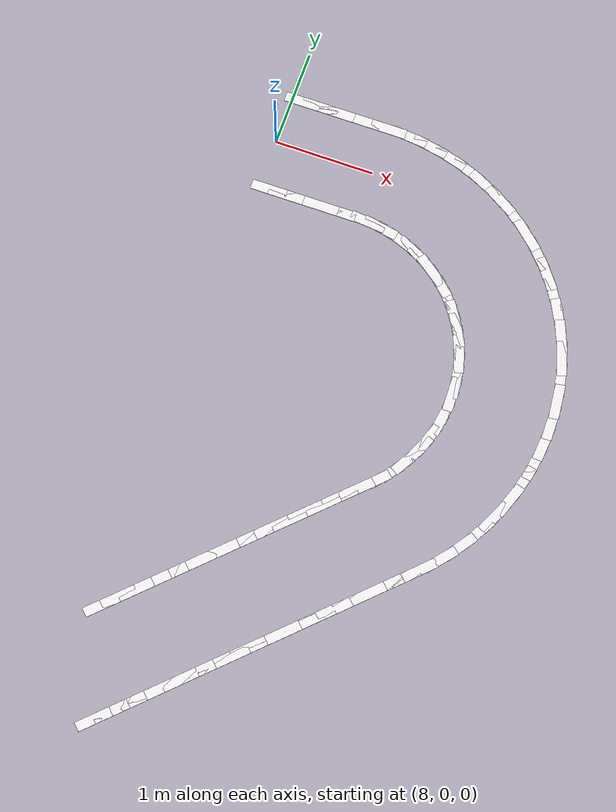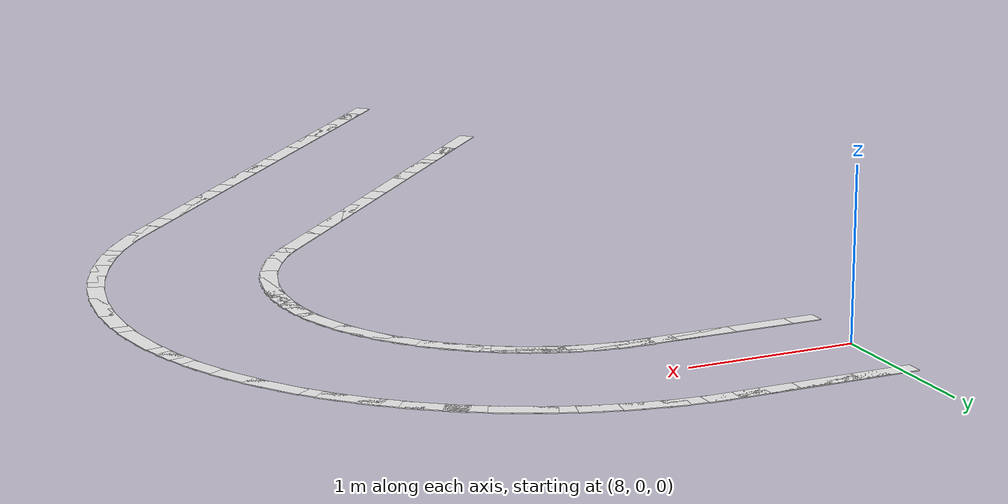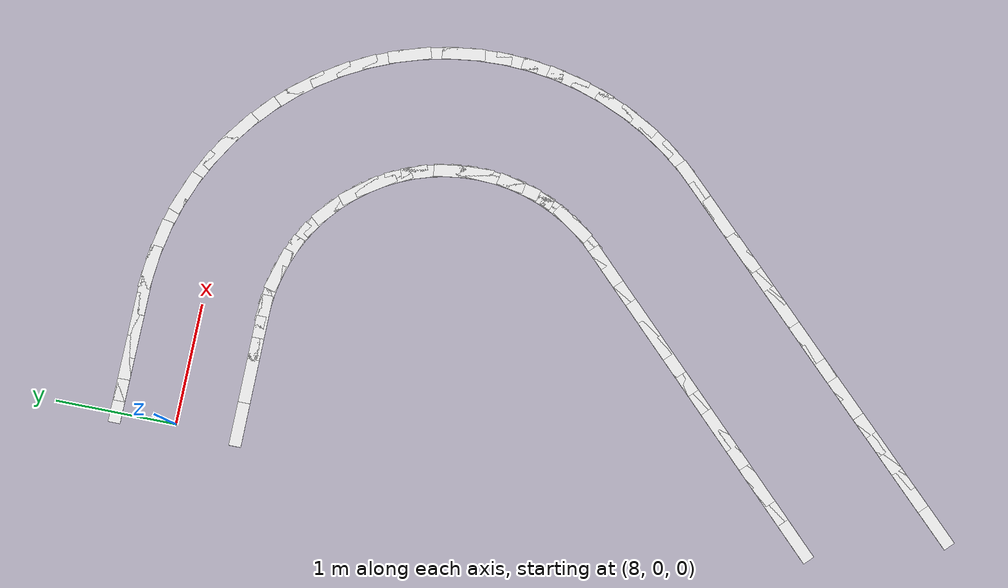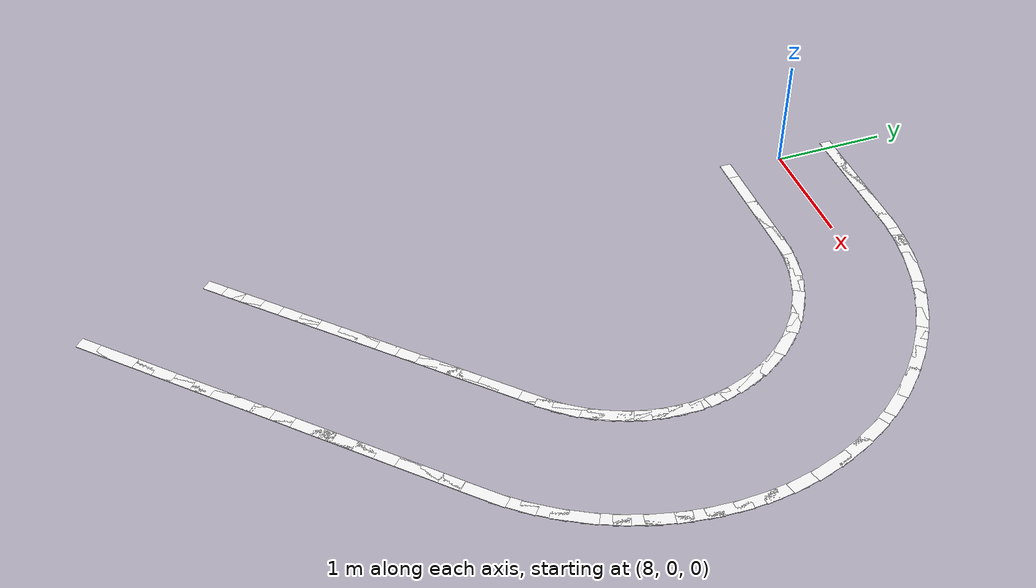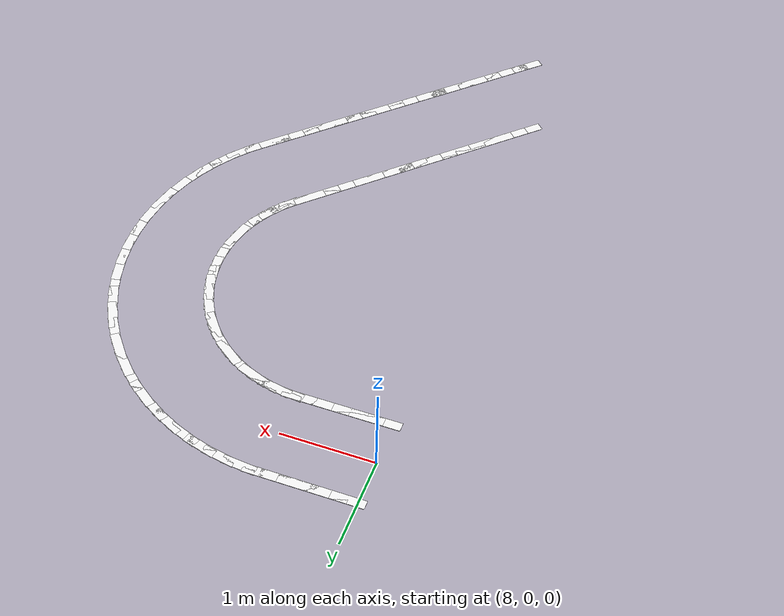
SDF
<sdf version="1.7">
 <world name="cone_lane">
  <model name="ground_plane">
   <static>true</static>
   <link name="link">
    <collision name="collision">
     <geometry><plane><normal>0 0 1</normal><size>150 150</size></plane></geometry>
     <surface><friction><ode><mu>1.0</mu></ode></friction></surface>
    </collision>
   </link>
  </model>
  <model name="line_L046">
   <static>true</static>
   <pose>8.100 0.500 0.0030 0 0 0.0000</pose>
   <link name="link">
    <visual name="v">
     <geometry><box><size>0.360 0.100 0.005</size></box></geometry>
     <material>
      <ambient>0.85 0.85 0.85 1</ambient>
      <diffuse>0.95 0.95 0.95 1</diffuse>
      <specular>0.1 0.1 0.1 1</specular>
      <emissive>0.7 0.7 0.7 1</emissive>
     </material>
    </visual>
   </link>
  </model>
  <model name="line_L047">
   <static>true</static>
   <pose>8.280 0.500 0.0030 0 0 0.0000</pose>
   <link name="link">
    <visual name="v">
     <geometry><box><size>0.360 0.100 0.005</size></box></geometry>
     <material>
      <ambient>0.85 0.85 0.85 1</ambient>
      <diffuse>0.95 0.95 0.95 1</diffuse>
      <specular>0.1 0.1 0.1 1</specular>
      <emissive>0.7 0.7 0.7 1</emissive>
     </material>
    </visual>
   </link>
  </model>
  <model name="line_L048">
   <static>true</static>
   <pose>8.460 0.500 0.0030 0 0 0.0000</pose>
   <link name="link">
    <visual name="v">
     <geometry><box><size>0.360 0.100 0.005</size></box></geometry>
     <material>
      <ambient>0.85 0.85 0.85 1</ambient>
      <diffuse>0.95 0.95 0.95 1</diffuse>
      <specular>0.1 0.1 0.1 1</specular>
      <emissive>0.7 0.7 0.7 1</emissive>
     </material>
    </visual>
   </link>
  </model>
  <model name="line_L049">
   <static>true</static>
   <pose>8.640 0.500 0.0030 0 0 0.0000</pose>
   <link name="link">
    <visual name="v">
     <geometry><box><size>0.360 0.100 0.005</size></box></geometry>
     <material>
      <ambient>0.85 0.85 0.85 1</ambient>
      <diffuse>0.95 0.95 0.95 1</diffuse>
      <specular>0.1 0.1 0.1 1</specular>
      <emissive>0.7 0.7 0.7 1</emissive>
     </material>
    </visual>
   </link>
  </model>
  <model name="line_L050">
   <static>true</static>
   <pose>8.820 0.500 0.0030 0 0 0.0000</pose>
   <link name="link">
    <visual name="v">
     <geometry><box><size>0.360 0.100 0.005</size></box></geometry>
     <material>
      <ambient>0.85 0.85 0.85 1</ambient>
      <diffuse>0.95 0.95 0.95 1</diffuse>
      <specular>0.1 0.1 0.1 1</specular>
      <emissive>0.7 0.7 0.7 1</emissive>
     </material>
    </visual>
   </link>
  </model>
  <model name="line_L051">
   <static>true</static>
   <pose>9.001 0.500 0.0030 0 0 -0.0025</pose>
   <link name="link">
    <visual name="v">
     <geometry><box><size>0.360 0.100 0.005</size></box></geometry>
     <material>
      <ambient>0.85 0.85 0.85 1</ambient>
      <diffuse>0.95 0.95 0.95 1</diffuse>
      <specular>0.1 0.1 0.1 1</specular>
      <emissive>0.7 0.7 0.7 1</emissive>
     </material>
    </visual>
   </link>
  </model>
  <model name="line_L052">
   <static>true</static>
   <pose>9.225 0.490 0.0030 0 0 -0.0902</pose>
   <link name="link">
    <visual name="v">
     <geometry><box><size>0.360 0.100 0.005</size></box></geometry>
     <material>
      <ambient>0.85 0.85 0.85 1</ambient>
      <diffuse>0.95 0.95 0.95 1</diffuse>
      <specular>0.1 0.1 0.1 1</specular>
      <emissive>0.7 0.7 0.7 1</emissive>
     </material>
    </visual>
   </link>
  </model>
  <model name="line_L053">
   <static>true</static>
   <pose>9.449 0.459 0.0030 0 0 -0.1805</pose>
   <link name="link">
    <visual name="v">
     <geometry><box><size>0.360 0.100 0.005</size></box></geometry>
     <material>
      <ambient>0.85 0.85 0.85 1</ambient>
      <diffuse>0.95 0.95 0.95 1</diffuse>
      <specular>0.1 0.1 0.1 1</specular>
      <emissive>0.7 0.7 0.7 1</emissive>
     </material>
    </visual>
   </link>
  </model>
  <model name="line_L054">
   <static>true</static>
   <pose>9.669 0.409 0.0030 0 0 -0.2707</pose>
   <link name="link">
    <visual name="v">
     <geometry><box><size>0.360 0.100 0.005</size></box></geometry>
     <material>
      <ambient>0.85 0.85 0.85 1</ambient>
      <diffuse>0.95 0.95 0.95 1</diffuse>
      <specular>0.1 0.1 0.1 1</specular>
      <emissive>0.7 0.7 0.7 1</emissive>
     </material>
    </visual>
   </link>
  </model>
  <model name="line_L055">
   <static>true</static>
   <pose>9.883 0.339 0.0030 0 0 -0.3609</pose>
   <link name="link">
    <visual name="v">
     <geometry><box><size>0.360 0.100 0.005</size></box></geometry>
     <material>
      <ambient>0.85 0.85 0.85 1</ambient>
      <diffuse>0.95 0.95 0.95 1</diffuse>
      <specular>0.1 0.1 0.1 1</specular>
      <emissive>0.7 0.7 0.7 1</emissive>
     </material>
    </visual>
   </link>
  </model>
  <model name="line_L056">
   <static>true</static>
   <pose>10.090 0.250 0.0030 0 0 -0.4512</pose>
   <link name="link">
    <visual name="v">
     <geometry><box><size>0.360 0.100 0.005</size></box></geometry>
     <material>
      <ambient>0.85 0.85 0.85 1</ambient>
      <diffuse>0.95 0.95 0.95 1</diffuse>
      <specular>0.1 0.1 0.1 1</specular>
      <emissive>0.7 0.7 0.7 1</emissive>
     </material>
    </visual>
   </link>
  </model>
  <model name="line_L057">
   <static>true</static>
   <pose>10.288 0.142 0.0030 0 0 -0.5414</pose>
   <link name="link">
    <visual name="v">
     <geometry><box><size>0.360 0.100 0.005</size></box></geometry>
     <material>
      <ambient>0.85 0.85 0.85 1</ambient>
      <diffuse>0.95 0.95 0.95 1</diffuse>
      <specular>0.1 0.1 0.1 1</specular>
      <emissive>0.7 0.7 0.7 1</emissive>
     </material>
    </visual>
   </link>
  </model>
  <model name="line_L058">
   <static>true</static>
   <pose>10.476 0.018 0.0030 0 0 -0.6317</pose>
   <link name="link">
    <visual name="v">
     <geometry><box><size>0.360 0.100 0.005</size></box></geometry>
     <material>
      <ambient>0.85 0.85 0.85 1</ambient>
      <diffuse>0.95 0.95 0.95 1</diffuse>
      <specular>0.1 0.1 0.1 1</specular>
      <emissive>0.7 0.7 0.7 1</emissive>
     </material>
    </visual>
   </link>
  </model>
  <model name="line_L059">
   <static>true</static>
   <pose>10.652 -0.124 0.0030 0 0 -0.7219</pose>
   <link name="link">
    <visual name="v">
     <geometry><box><size>0.360 0.100 0.005</size></box></geometry>
     <material>
      <ambient>0.85 0.85 0.85 1</ambient>
      <diffuse>0.95 0.95 0.95 1</diffuse>
      <specular>0.1 0.1 0.1 1</specular>
      <emissive>0.7 0.7 0.7 1</emissive>
     </material>
    </visual>
   </link>
  </model>
  <model name="line_L060">
   <static>true</static>
   <pose>10.814 -0.280 0.0030 0 0 -0.8121</pose>
   <link name="link">
    <visual name="v">
     <geometry><box><size>0.360 0.100 0.005</size></box></geometry>
     <material>
      <ambient>0.85 0.85 0.85 1</ambient>
      <diffuse>0.95 0.95 0.95 1</diffuse>
      <specular>0.1 0.1 0.1 1</specular>
      <emissive>0.7 0.7 0.7 1</emissive>
     </material>
    </visual>
   </link>
  </model>
  <model name="line_L061">
   <static>true</static>
   <pose>10.962 -0.451 0.0030 0 0 -0.9024</pose>
   <link name="link">
    <visual name="v">
     <geometry><box><size>0.360 0.100 0.005</size></box></geometry>
     <material>
      <ambient>0.85 0.85 0.85 1</ambient>
      <diffuse>0.95 0.95 0.95 1</diffuse>
      <specular>0.1 0.1 0.1 1</specular>
      <emissive>0.7 0.7 0.7 1</emissive>
     </material>
    </visual>
   </link>
  </model>
  <model name="line_L062">
   <static>true</static>
   <pose>11.094 -0.634 0.0030 0 0 -0.9926</pose>
   <link name="link">
    <visual name="v">
     <geometry><box><size>0.360 0.100 0.005</size></box></geometry>
     <material>
      <ambient>0.85 0.85 0.85 1</ambient>
      <diffuse>0.95 0.95 0.95 1</diffuse>
      <specular>0.1 0.1 0.1 1</specular>
      <emissive>0.7 0.7 0.7 1</emissive>
     </material>
    </visual>
   </link>
  </model>
  <model name="line_L063">
   <static>true</static>
   <pose>11.208 -0.828 0.0030 0 0 -1.0828</pose>
   <link name="link">
    <visual name="v">
     <geometry><box><size>0.360 0.100 0.005</size></box></geometry>
     <material>
      <ambient>0.85 0.85 0.85 1</ambient>
      <diffuse>0.95 0.95 0.95 1</diffuse>
      <specular>0.1 0.1 0.1 1</specular>
      <emissive>0.7 0.7 0.7 1</emissive>
     </material>
    </visual>
   </link>
  </model>
  <model name="line_L064">
   <static>true</static>
   <pose>11.305 -1.032 0.0030 0 0 -1.1731</pose>
   <link name="link">
    <visual name="v">
     <geometry><box><size>0.360 0.100 0.005</size></box></geometry>
     <material>
      <ambient>0.85 0.85 0.85 1</ambient>
      <diffuse>0.95 0.95 0.95 1</diffuse>
      <specular>0.1 0.1 0.1 1</specular>
      <emissive>0.7 0.7 0.7 1</emissive>
     </material>
    </visual>
   </link>
  </model>
  <model name="line_L065">
   <static>true</static>
   <pose>11.383 -1.243 0.0030 0 0 -1.2633</pose>
   <link name="link">
    <visual name="v">
     <geometry><box><size>0.360 0.100 0.005</size></box></geometry>
     <material>
      <ambient>0.85 0.85 0.85 1</ambient>
      <diffuse>0.95 0.95 0.95 1</diffuse>
      <specular>0.1 0.1 0.1 1</specular>
      <emissive>0.7 0.7 0.7 1</emissive>
     </material>
    </visual>
   </link>
  </model>
  <model name="line_L066">
   <static>true</static>
   <pose>11.441 -1.461 0.0030 0 0 -1.3536</pose>
   <link name="link">
    <visual name="v">
     <geometry><box><size>0.360 0.100 0.005</size></box></geometry>
     <material>
      <ambient>0.85 0.85 0.85 1</ambient>
      <diffuse>0.95 0.95 0.95 1</diffuse>
      <specular>0.1 0.1 0.1 1</specular>
      <emissive>0.7 0.7 0.7 1</emissive>
     </material>
    </visual>
   </link>
  </model>
  <model name="line_L067">
   <static>true</static>
   <pose>11.480 -1.683 0.0030 0 0 -1.4438</pose>
   <link name="link">
    <visual name="v">
     <geometry><box><size>0.360 0.100 0.005</size></box></geometry>
     <material>
      <ambient>0.85 0.85 0.85 1</ambient>
      <diffuse>0.95 0.95 0.95 1</diffuse>
      <specular>0.1 0.1 0.1 1</specular>
      <emissive>0.7 0.7 0.7 1</emissive>
     </material>
    </visual>
   </link>
  </model>
  <model name="line_L068">
   <static>true</static>
   <pose>11.498 -1.908 0.0030 0 0 -1.5340</pose>
   <link name="link">
    <visual name="v">
     <geometry><box><size>0.360 0.100 0.005</size></box></geometry>
     <material>
      <ambient>0.85 0.85 0.85 1</ambient>
      <diffuse>0.95 0.95 0.95 1</diffuse>
      <specular>0.1 0.1 0.1 1</specular>
      <emissive>0.7 0.7 0.7 1</emissive>
     </material>
    </visual>
   </link>
  </model>
  <model name="line_L069">
   <static>true</static>
   <pose>11.496 -2.134 0.0030 0 0 -1.6243</pose>
   <link name="link">
    <visual name="v">
     <geometry><box><size>0.360 0.100 0.005</size></box></geometry>
     <material>
      <ambient>0.85 0.85 0.85 1</ambient>
      <diffuse>0.95 0.95 0.95 1</diffuse>
      <specular>0.1 0.1 0.1 1</specular>
      <emissive>0.7 0.7 0.7 1</emissive>
     </material>
    </visual>
   </link>
  </model>
  <model name="line_L070">
   <static>true</static>
   <pose>11.474 -2.358 0.0030 0 0 -1.7145</pose>
   <link name="link">
    <visual name="v">
     <geometry><box><size>0.360 0.100 0.005</size></box></geometry>
     <material>
      <ambient>0.85 0.85 0.85 1</ambient>
      <diffuse>0.95 0.95 0.95 1</diffuse>
      <specular>0.1 0.1 0.1 1</specular>
      <emissive>0.7 0.7 0.7 1</emissive>
     </material>
    </visual>
   </link>
  </model>
  <model name="line_L071">
   <static>true</static>
   <pose>11.432 -2.580 0.0030 0 0 -1.8047</pose>
   <link name="link">
    <visual name="v">
     <geometry><box><size>0.360 0.100 0.005</size></box></geometry>
     <material>
      <ambient>0.85 0.85 0.85 1</ambient>
      <diffuse>0.95 0.95 0.95 1</diffuse>
      <specular>0.1 0.1 0.1 1</specular>
      <emissive>0.7 0.7 0.7 1</emissive>
     </material>
    </visual>
   </link>
  </model>
  <model name="line_L072">
   <static>true</static>
   <pose>11.370 -2.796 0.0030 0 0 -1.8950</pose>
   <link name="link">
    <visual name="v">
     <geometry><box><size>0.360 0.100 0.005</size></box></geometry>
     <material>
      <ambient>0.85 0.85 0.85 1</ambient>
      <diffuse>0.95 0.95 0.95 1</diffuse>
      <specular>0.1 0.1 0.1 1</specular>
      <emissive>0.7 0.7 0.7 1</emissive>
     </material>
    </visual>
   </link>
  </model>
  <model name="line_L073">
   <static>true</static>
   <pose>11.288 -3.007 0.0030 0 0 -1.9852</pose>
   <link name="link">
    <visual name="v">
     <geometry><box><size>0.360 0.100 0.005</size></box></geometry>
     <material>
      <ambient>0.85 0.85 0.85 1</ambient>
      <diffuse>0.95 0.95 0.95 1</diffuse>
      <specular>0.1 0.1 0.1 1</specular>
      <emissive>0.7 0.7 0.7 1</emissive>
     </material>
    </visual>
   </link>
  </model>
  <model name="line_L074">
   <static>true</static>
   <pose>11.188 -3.209 0.0030 0 0 -2.0755</pose>
   <link name="link">
    <visual name="v">
     <geometry><box><size>0.360 0.100 0.005</size></box></geometry>
     <material>
      <ambient>0.85 0.85 0.85 1</ambient>
      <diffuse>0.95 0.95 0.95 1</diffuse>
      <specular>0.1 0.1 0.1 1</specular>
      <emissive>0.7 0.7 0.7 1</emissive>
     </material>
    </visual>
   </link>
  </model>
  <model name="line_L075">
   <static>true</static>
   <pose>11.071 -3.401 0.0030 0 0 -2.1657</pose>
   <link name="link">
    <visual name="v">
     <geometry><box><size>0.360 0.100 0.005</size></box></geometry>
     <material>
      <ambient>0.85 0.85 0.85 1</ambient>
      <diffuse>0.95 0.95 0.95 1</diffuse>
      <specular>0.1 0.1 0.1 1</specular>
      <emissive>0.7 0.7 0.7 1</emissive>
     </material>
    </visual>
   </link>
  </model>
  <model name="line_L076">
   <static>true</static>
   <pose>10.936 -3.582 0.0030 0 0 -2.2559</pose>
   <link name="link">
    <visual name="v">
     <geometry><box><size>0.360 0.100 0.005</size></box></geometry>
     <material>
      <ambient>0.85 0.85 0.85 1</ambient>
      <diffuse>0.95 0.95 0.95 1</diffuse>
      <specular>0.1 0.1 0.1 1</specular>
      <emissive>0.7 0.7 0.7 1</emissive>
     </material>
    </visual>
   </link>
  </model>
  <model name="line_L077">
   <static>true</static>
   <pose>10.785 -3.750 0.0030 0 0 -2.3462</pose>
   <link name="link">
    <visual name="v">
     <geometry><box><size>0.360 0.100 0.005</size></box></geometry>
     <material>
      <ambient>0.85 0.85 0.85 1</ambient>
      <diffuse>0.95 0.95 0.95 1</diffuse>
      <specular>0.1 0.1 0.1 1</specular>
      <emissive>0.7 0.7 0.7 1</emissive>
     </material>
    </visual>
   </link>
  </model>
  <model name="line_L078">
   <static>true</static>
   <pose>10.655 -3.881 0.0030 0 0 -2.3562</pose>
   <link name="link">
    <visual name="v">
     <geometry><box><size>0.360 0.100 0.005</size></box></geometry>
     <material>
      <ambient>0.85 0.85 0.85 1</ambient>
      <diffuse>0.95 0.95 0.95 1</diffuse>
      <specular>0.1 0.1 0.1 1</specular>
      <emissive>0.7 0.7 0.7 1</emissive>
     </material>
    </visual>
   </link>
  </model>
  <model name="line_L079">
   <static>true</static>
   <pose>10.527 -4.008 0.0030 0 0 -2.3562</pose>
   <link name="link">
    <visual name="v">
     <geometry><box><size>0.360 0.100 0.005</size></box></geometry>
     <material>
      <ambient>0.85 0.85 0.85 1</ambient>
      <diffuse>0.95 0.95 0.95 1</diffuse>
      <specular>0.1 0.1 0.1 1</specular>
      <emissive>0.7 0.7 0.7 1</emissive>
     </material>
    </visual>
   </link>
  </model>
  <model name="line_L080">
   <static>true</static>
   <pose>10.400 -4.135 0.0030 0 0 -2.3562</pose>
   <link name="link">
    <visual name="v">
     <geometry><box><size>0.360 0.100 0.005</size></box></geometry>
     <material>
      <ambient>0.85 0.85 0.85 1</ambient>
      <diffuse>0.95 0.95 0.95 1</diffuse>
      <specular>0.1 0.1 0.1 1</specular>
      <emissive>0.7 0.7 0.7 1</emissive>
     </material>
    </visual>
   </link>
  </model>
  <model name="line_L081">
   <static>true</static>
   <pose>10.273 -4.263 0.0030 0 0 -2.3562</pose>
   <link name="link">
    <visual name="v">
     <geometry><box><size>0.360 0.100 0.005</size></box></geometry>
     <material>
      <ambient>0.85 0.85 0.85 1</ambient>
      <diffuse>0.95 0.95 0.95 1</diffuse>
      <specular>0.1 0.1 0.1 1</specular>
      <emissive>0.7 0.7 0.7 1</emissive>
     </material>
    </visual>
   </link>
  </model>
  <model name="line_L082">
   <static>true</static>
   <pose>10.146 -4.390 0.0030 0 0 -2.3562</pose>
   <link name="link">
    <visual name="v">
     <geometry><box><size>0.360 0.100 0.005</size></box></geometry>
     <material>
      <ambient>0.85 0.85 0.85 1</ambient>
      <diffuse>0.95 0.95 0.95 1</diffuse>
      <specular>0.1 0.1 0.1 1</specular>
      <emissive>0.7 0.7 0.7 1</emissive>
     </material>
    </visual>
   </link>
  </model>
  <model name="line_L083">
   <static>true</static>
   <pose>10.018 -4.517 0.0030 0 0 -2.3562</pose>
   <link name="link">
    <visual name="v">
     <geometry><box><size>0.360 0.100 0.005</size></box></geometry>
     <material>
      <ambient>0.85 0.85 0.85 1</ambient>
      <diffuse>0.95 0.95 0.95 1</diffuse>
      <specular>0.1 0.1 0.1 1</specular>
      <emissive>0.7 0.7 0.7 1</emissive>
     </material>
    </visual>
   </link>
  </model>
  <model name="line_L084">
   <static>true</static>
   <pose>9.891 -4.645 0.0030 0 0 -2.3562</pose>
   <link name="link">
    <visual name="v">
     <geometry><box><size>0.360 0.100 0.005</size></box></geometry>
     <material>
      <ambient>0.85 0.85 0.85 1</ambient>
      <diffuse>0.95 0.95 0.95 1</diffuse>
      <specular>0.1 0.1 0.1 1</specular>
      <emissive>0.7 0.7 0.7 1</emissive>
     </material>
    </visual>
   </link>
  </model>
  <model name="line_L085">
   <static>true</static>
   <pose>9.764 -4.772 0.0030 0 0 -2.3562</pose>
   <link name="link">
    <visual name="v">
     <geometry><box><size>0.360 0.100 0.005</size></box></geometry>
     <material>
      <ambient>0.85 0.85 0.85 1</ambient>
      <diffuse>0.95 0.95 0.95 1</diffuse>
      <specular>0.1 0.1 0.1 1</specular>
      <emissive>0.7 0.7 0.7 1</emissive>
     </material>
    </visual>
   </link>
  </model>
  <model name="line_L086">
   <static>true</static>
   <pose>9.636 -4.899 0.0030 0 0 -2.3562</pose>
   <link name="link">
    <visual name="v">
     <geometry><box><size>0.360 0.100 0.005</size></box></geometry>
     <material>
      <ambient>0.85 0.85 0.85 1</ambient>
      <diffuse>0.95 0.95 0.95 1</diffuse>
      <specular>0.1 0.1 0.1 1</specular>
      <emissive>0.7 0.7 0.7 1</emissive>
     </material>
    </visual>
   </link>
  </model>
  <model name="line_L087">
   <static>true</static>
   <pose>9.509 -5.026 0.0030 0 0 -2.3562</pose>
   <link name="link">
    <visual name="v">
     <geometry><box><size>0.360 0.100 0.005</size></box></geometry>
     <material>
      <ambient>0.85 0.85 0.85 1</ambient>
      <diffuse>0.95 0.95 0.95 1</diffuse>
      <specular>0.1 0.1 0.1 1</specular>
      <emissive>0.7 0.7 0.7 1</emissive>
     </material>
    </visual>
   </link>
  </model>
  <model name="line_L088">
   <static>true</static>
   <pose>9.382 -5.154 0.0030 0 0 -2.3562</pose>
   <link name="link">
    <visual name="v">
     <geometry><box><size>0.360 0.100 0.005</size></box></geometry>
     <material>
      <ambient>0.85 0.85 0.85 1</ambient>
      <diffuse>0.95 0.95 0.95 1</diffuse>
      <specular>0.1 0.1 0.1 1</specular>
      <emissive>0.7 0.7 0.7 1</emissive>
     </material>
    </visual>
   </link>
  </model>
  <model name="line_L089">
   <static>true</static>
   <pose>9.255 -5.281 0.0030 0 0 -2.3562</pose>
   <link name="link">
    <visual name="v">
     <geometry><box><size>0.360 0.100 0.005</size></box></geometry>
     <material>
      <ambient>0.85 0.85 0.85 1</ambient>
      <diffuse>0.95 0.95 0.95 1</diffuse>
      <specular>0.1 0.1 0.1 1</specular>
      <emissive>0.7 0.7 0.7 1</emissive>
     </material>
    </visual>
   </link>
  </model>
  <model name="line_L090">
   <static>true</static>
   <pose>9.127 -5.408 0.0030 0 0 -2.3562</pose>
   <link name="link">
    <visual name="v">
     <geometry><box><size>0.360 0.100 0.005</size></box></geometry>
     <material>
      <ambient>0.85 0.85 0.85 1</ambient>
      <diffuse>0.95 0.95 0.95 1</diffuse>
      <specular>0.1 0.1 0.1 1</specular>
      <emissive>0.7 0.7 0.7 1</emissive>
     </material>
    </visual>
   </link>
  </model>
  <model name="line_L091">
   <static>true</static>
   <pose>9.000 -5.536 0.0030 0 0 -2.3562</pose>
   <link name="link">
    <visual name="v">
     <geometry><box><size>0.360 0.100 0.005</size></box></geometry>
     <material>
      <ambient>0.85 0.85 0.85 1</ambient>
      <diffuse>0.95 0.95 0.95 1</diffuse>
      <specular>0.1 0.1 0.1 1</specular>
      <emissive>0.7 0.7 0.7 1</emissive>
     </material>
    </visual>
   </link>
  </model>
  <model name="line_L092">
   <static>true</static>
   <pose>8.873 -5.663 0.0030 0 0 -2.3562</pose>
   <link name="link">
    <visual name="v">
     <geometry><box><size>0.360 0.100 0.005</size></box></geometry>
     <material>
      <ambient>0.85 0.85 0.85 1</ambient>
      <diffuse>0.95 0.95 0.95 1</diffuse>
      <specular>0.1 0.1 0.1 1</specular>
      <emissive>0.7 0.7 0.7 1</emissive>
     </material>
    </visual>
   </link>
  </model>
  <model name="line_L093">
   <static>true</static>
   <pose>8.745 -5.790 0.0030 0 0 -2.3562</pose>
   <link name="link">
    <visual name="v">
     <geometry><box><size>0.360 0.100 0.005</size></box></geometry>
     <material>
      <ambient>0.85 0.85 0.85 1</ambient>
      <diffuse>0.95 0.95 0.95 1</diffuse>
      <specular>0.1 0.1 0.1 1</specular>
      <emissive>0.7 0.7 0.7 1</emissive>
     </material>
    </visual>
   </link>
  </model>
  <model name="line_L094">
   <static>true</static>
   <pose>8.618 -5.917 0.0030 0 0 -2.3562</pose>
   <link name="link">
    <visual name="v">
     <geometry><box><size>0.360 0.100 0.005</size></box></geometry>
     <material>
      <ambient>0.85 0.85 0.85 1</ambient>
      <diffuse>0.95 0.95 0.95 1</diffuse>
      <specular>0.1 0.1 0.1 1</specular>
      <emissive>0.7 0.7 0.7 1</emissive>
     </material>
    </visual>
   </link>
  </model>
  <model name="line_L095">
   <static>true</static>
   <pose>8.491 -6.045 0.0030 0 0 -2.3562</pose>
   <link name="link">
    <visual name="v">
     <geometry><box><size>0.360 0.100 0.005</size></box></geometry>
     <material>
      <ambient>0.85 0.85 0.85 1</ambient>
      <diffuse>0.95 0.95 0.95 1</diffuse>
      <specular>0.1 0.1 0.1 1</specular>
      <emissive>0.7 0.7 0.7 1</emissive>
     </material>
    </visual>
   </link>
  </model>
  <model name="line_L096">
   <static>true</static>
   <pose>8.364 -6.172 0.0030 0 0 -2.3562</pose>
   <link name="link">
    <visual name="v">
     <geometry><box><size>0.360 0.100 0.005</size></box></geometry>
     <material>
      <ambient>0.85 0.85 0.85 1</ambient>
      <diffuse>0.95 0.95 0.95 1</diffuse>
      <specular>0.1 0.1 0.1 1</specular>
      <emissive>0.7 0.7 0.7 1</emissive>
     </material>
    </visual>
   </link>
  </model>
  <model name="line_R046">
   <static>true</static>
   <pose>8.100 -0.500 0.0030 0 0 0.0000</pose>
   <link name="link">
    <visual name="v">
     <geometry><box><size>0.360 0.100 0.005</size></box></geometry>
     <material>
      <ambient>0.85 0.85 0.85 1</ambient>
      <diffuse>0.95 0.95 0.95 1</diffuse>
      <specular>0.1 0.1 0.1 1</specular>
      <emissive>0.7 0.7 0.7 1</emissive>
     </material>
    </visual>
   </link>
  </model>
  <model name="line_R047">
   <static>true</static>
   <pose>8.280 -0.500 0.0030 0 0 0.0000</pose>
   <link name="link">
    <visual name="v">
     <geometry><box><size>0.360 0.100 0.005</size></box></geometry>
     <material>
      <ambient>0.85 0.85 0.85 1</ambient>
      <diffuse>0.95 0.95 0.95 1</diffuse>
      <specular>0.1 0.1 0.1 1</specular>
      <emissive>0.7 0.7 0.7 1</emissive>
     </material>
    </visual>
   </link>
  </model>
  <model name="line_R048">
   <static>true</static>
   <pose>8.460 -0.500 0.0030 0 0 0.0000</pose>
   <link name="link">
    <visual name="v">
     <geometry><box><size>0.360 0.100 0.005</size></box></geometry>
     <material>
      <ambient>0.85 0.85 0.85 1</ambient>
      <diffuse>0.95 0.95 0.95 1</diffuse>
      <specular>0.1 0.1 0.1 1</specular>
      <emissive>0.7 0.7 0.7 1</emissive>
     </material>
    </visual>
   </link>
  </model>
  <model name="line_R049">
   <static>true</static>
   <pose>8.640 -0.500 0.0030 0 0 0.0000</pose>
   <link name="link">
    <visual name="v">
     <geometry><box><size>0.360 0.100 0.005</size></box></geometry>
     <material>
      <ambient>0.85 0.85 0.85 1</ambient>
      <diffuse>0.95 0.95 0.95 1</diffuse>
      <specular>0.1 0.1 0.1 1</specular>
      <emissive>0.7 0.7 0.7 1</emissive>
     </material>
    </visual>
   </link>
  </model>
  <model name="line_R050">
   <static>true</static>
   <pose>8.820 -0.500 0.0030 0 0 0.0000</pose>
   <link name="link">
    <visual name="v">
     <geometry><box><size>0.360 0.100 0.005</size></box></geometry>
     <material>
      <ambient>0.85 0.85 0.85 1</ambient>
      <diffuse>0.95 0.95 0.95 1</diffuse>
      <specular>0.1 0.1 0.1 1</specular>
      <emissive>0.7 0.7 0.7 1</emissive>
     </material>
    </visual>
   </link>
  </model>
  <model name="line_R051">
   <static>true</static>
   <pose>8.999 -0.500 0.0030 0 0 -0.0025</pose>
   <link name="link">
    <visual name="v">
     <geometry><box><size>0.360 0.100 0.005</size></box></geometry>
     <material>
      <ambient>0.85 0.85 0.85 1</ambient>
      <diffuse>0.95 0.95 0.95 1</diffuse>
      <specular>0.1 0.1 0.1 1</specular>
      <emissive>0.7 0.7 0.7 1</emissive>
     </material>
    </visual>
   </link>
  </model>
  <model name="line_R052">
   <static>true</static>
   <pose>9.135 -0.506 0.0030 0 0 -0.0902</pose>
   <link name="link">
    <visual name="v">
     <geometry><box><size>0.360 0.100 0.005</size></box></geometry>
     <material>
      <ambient>0.85 0.85 0.85 1</ambient>
      <diffuse>0.95 0.95 0.95 1</diffuse>
      <specular>0.1 0.1 0.1 1</specular>
      <emissive>0.7 0.7 0.7 1</emissive>
     </material>
    </visual>
   </link>
  </model>
  <model name="line_R053">
   <static>true</static>
   <pose>9.269 -0.524 0.0030 0 0 -0.1805</pose>
   <link name="link">
    <visual name="v">
     <geometry><box><size>0.360 0.100 0.005</size></box></geometry>
     <material>
      <ambient>0.85 0.85 0.85 1</ambient>
      <diffuse>0.95 0.95 0.95 1</diffuse>
      <specular>0.1 0.1 0.1 1</specular>
      <emissive>0.7 0.7 0.7 1</emissive>
     </material>
    </visual>
   </link>
  </model>
  <model name="line_R054">
   <static>true</static>
   <pose>9.401 -0.555 0.0030 0 0 -0.2707</pose>
   <link name="link">
    <visual name="v">
     <geometry><box><size>0.360 0.100 0.005</size></box></geometry>
     <material>
      <ambient>0.85 0.85 0.85 1</ambient>
      <diffuse>0.95 0.95 0.95 1</diffuse>
      <specular>0.1 0.1 0.1 1</specular>
      <emissive>0.7 0.7 0.7 1</emissive>
     </material>
    </visual>
   </link>
  </model>
  <model name="line_R055">
   <static>true</static>
   <pose>9.530 -0.597 0.0030 0 0 -0.3609</pose>
   <link name="link">
    <visual name="v">
     <geometry><box><size>0.360 0.100 0.005</size></box></geometry>
     <material>
      <ambient>0.85 0.85 0.85 1</ambient>
      <diffuse>0.95 0.95 0.95 1</diffuse>
      <specular>0.1 0.1 0.1 1</specular>
      <emissive>0.7 0.7 0.7 1</emissive>
     </material>
    </visual>
   </link>
  </model>
  <model name="line_R056">
   <static>true</static>
   <pose>9.654 -0.650 0.0030 0 0 -0.4512</pose>
   <link name="link">
    <visual name="v">
     <geometry><box><size>0.360 0.100 0.005</size></box></geometry>
     <material>
      <ambient>0.85 0.85 0.85 1</ambient>
      <diffuse>0.95 0.95 0.95 1</diffuse>
      <specular>0.1 0.1 0.1 1</specular>
      <emissive>0.7 0.7 0.7 1</emissive>
     </material>
    </visual>
   </link>
  </model>
  <model name="line_R057">
   <static>true</static>
   <pose>9.773 -0.715 0.0030 0 0 -0.5414</pose>
   <link name="link">
    <visual name="v">
     <geometry><box><size>0.360 0.100 0.005</size></box></geometry>
     <material>
      <ambient>0.85 0.85 0.85 1</ambient>
      <diffuse>0.95 0.95 0.95 1</diffuse>
      <specular>0.1 0.1 0.1 1</specular>
      <emissive>0.7 0.7 0.7 1</emissive>
     </material>
    </visual>
   </link>
  </model>
  <model name="line_R058">
   <static>true</static>
   <pose>9.886 -0.789 0.0030 0 0 -0.6317</pose>
   <link name="link">
    <visual name="v">
     <geometry><box><size>0.360 0.100 0.005</size></box></geometry>
     <material>
      <ambient>0.85 0.85 0.85 1</ambient>
      <diffuse>0.95 0.95 0.95 1</diffuse>
      <specular>0.1 0.1 0.1 1</specular>
      <emissive>0.7 0.7 0.7 1</emissive>
     </material>
    </visual>
   </link>
  </model>
  <model name="line_R059">
   <static>true</static>
   <pose>9.991 -0.874 0.0030 0 0 -0.7219</pose>
   <link name="link">
    <visual name="v">
     <geometry><box><size>0.360 0.100 0.005</size></box></geometry>
     <material>
      <ambient>0.85 0.85 0.85 1</ambient>
      <diffuse>0.95 0.95 0.95 1</diffuse>
      <specular>0.1 0.1 0.1 1</specular>
      <emissive>0.7 0.7 0.7 1</emissive>
     </material>
    </visual>
   </link>
  </model>
  <model name="line_R060">
   <static>true</static>
   <pose>10.089 -0.968 0.0030 0 0 -0.8121</pose>
   <link name="link">
    <visual name="v">
     <geometry><box><size>0.360 0.100 0.005</size></box></geometry>
     <material>
      <ambient>0.85 0.85 0.85 1</ambient>
      <diffuse>0.95 0.95 0.95 1</diffuse>
      <specular>0.1 0.1 0.1 1</specular>
      <emissive>0.7 0.7 0.7 1</emissive>
     </material>
    </visual>
   </link>
  </model>
  <model name="line_R061">
   <static>true</static>
   <pose>10.177 -1.070 0.0030 0 0 -0.9024</pose>
   <link name="link">
    <visual name="v">
     <geometry><box><size>0.360 0.100 0.005</size></box></geometry>
     <material>
      <ambient>0.85 0.85 0.85 1</ambient>
      <diffuse>0.95 0.95 0.95 1</diffuse>
      <specular>0.1 0.1 0.1 1</specular>
      <emissive>0.7 0.7 0.7 1</emissive>
     </material>
    </visual>
   </link>
  </model>
  <model name="line_R062">
   <static>true</static>
   <pose>10.256 -1.180 0.0030 0 0 -0.9926</pose>
   <link name="link">
    <visual name="v">
     <geometry><box><size>0.360 0.100 0.005</size></box></geometry>
     <material>
      <ambient>0.85 0.85 0.85 1</ambient>
      <diffuse>0.95 0.95 0.95 1</diffuse>
      <specular>0.1 0.1 0.1 1</specular>
      <emissive>0.7 0.7 0.7 1</emissive>
     </material>
    </visual>
   </link>
  </model>
  <model name="line_R063">
   <static>true</static>
   <pose>10.325 -1.297 0.0030 0 0 -1.0828</pose>
   <link name="link">
    <visual name="v">
     <geometry><box><size>0.360 0.100 0.005</size></box></geometry>
     <material>
      <ambient>0.85 0.85 0.85 1</ambient>
      <diffuse>0.95 0.95 0.95 1</diffuse>
      <specular>0.1 0.1 0.1 1</specular>
      <emissive>0.7 0.7 0.7 1</emissive>
     </material>
    </visual>
   </link>
  </model>
  <model name="line_R064">
   <static>true</static>
   <pose>10.383 -1.419 0.0030 0 0 -1.1731</pose>
   <link name="link">
    <visual name="v">
     <geometry><box><size>0.360 0.100 0.005</size></box></geometry>
     <material>
      <ambient>0.85 0.85 0.85 1</ambient>
      <diffuse>0.95 0.95 0.95 1</diffuse>
      <specular>0.1 0.1 0.1 1</specular>
      <emissive>0.7 0.7 0.7 1</emissive>
     </material>
    </visual>
   </link>
  </model>
  <model name="line_R065">
   <static>true</static>
   <pose>10.430 -1.546 0.0030 0 0 -1.2633</pose>
   <link name="link">
    <visual name="v">
     <geometry><box><size>0.360 0.100 0.005</size></box></geometry>
     <material>
      <ambient>0.85 0.85 0.85 1</ambient>
      <diffuse>0.95 0.95 0.95 1</diffuse>
      <specular>0.1 0.1 0.1 1</specular>
      <emissive>0.7 0.7 0.7 1</emissive>
     </material>
    </visual>
   </link>
  </model>
  <model name="line_R066">
   <static>true</static>
   <pose>10.465 -1.677 0.0030 0 0 -1.3536</pose>
   <link name="link">
    <visual name="v">
     <geometry><box><size>0.360 0.100 0.005</size></box></geometry>
     <material>
      <ambient>0.85 0.85 0.85 1</ambient>
      <diffuse>0.95 0.95 0.95 1</diffuse>
      <specular>0.1 0.1 0.1 1</specular>
      <emissive>0.7 0.7 0.7 1</emissive>
     </material>
    </visual>
   </link>
  </model>
  <model name="line_R067">
   <static>true</static>
   <pose>10.488 -1.810 0.0030 0 0 -1.4438</pose>
   <link name="link">
    <visual name="v">
     <geometry><box><size>0.360 0.100 0.005</size></box></geometry>
     <material>
      <ambient>0.85 0.85 0.85 1</ambient>
      <diffuse>0.95 0.95 0.95 1</diffuse>
      <specular>0.1 0.1 0.1 1</specular>
      <emissive>0.7 0.7 0.7 1</emissive>
     </material>
    </visual>
   </link>
  </model>
  <model name="line_R068">
   <static>true</static>
   <pose>10.499 -1.945 0.0030 0 0 -1.5340</pose>
   <link name="link">
    <visual name="v">
     <geometry><box><size>0.360 0.100 0.005</size></box></geometry>
     <material>
      <ambient>0.85 0.85 0.85 1</ambient>
      <diffuse>0.95 0.95 0.95 1</diffuse>
      <specular>0.1 0.1 0.1 1</specular>
      <emissive>0.7 0.7 0.7 1</emissive>
     </material>
    </visual>
   </link>
  </model>
  <model name="line_R069">
   <static>true</static>
   <pose>10.498 -2.080 0.0030 0 0 -1.6243</pose>
   <link name="link">
    <visual name="v">
     <geometry><box><size>0.360 0.100 0.005</size></box></geometry>
     <material>
      <ambient>0.85 0.85 0.85 1</ambient>
      <diffuse>0.95 0.95 0.95 1</diffuse>
      <specular>0.1 0.1 0.1 1</specular>
      <emissive>0.7 0.7 0.7 1</emissive>
     </material>
    </visual>
   </link>
  </model>
  <model name="line_R070">
   <static>true</static>
   <pose>10.485 -2.215 0.0030 0 0 -1.7145</pose>
   <link name="link">
    <visual name="v">
     <geometry><box><size>0.360 0.100 0.005</size></box></geometry>
     <material>
      <ambient>0.85 0.85 0.85 1</ambient>
      <diffuse>0.95 0.95 0.95 1</diffuse>
      <specular>0.1 0.1 0.1 1</specular>
      <emissive>0.7 0.7 0.7 1</emissive>
     </material>
    </visual>
   </link>
  </model>
  <model name="line_R071">
   <static>true</static>
   <pose>10.459 -2.348 0.0030 0 0 -1.8047</pose>
   <link name="link">
    <visual name="v">
     <geometry><box><size>0.360 0.100 0.005</size></box></geometry>
     <material>
      <ambient>0.85 0.85 0.85 1</ambient>
      <diffuse>0.95 0.95 0.95 1</diffuse>
      <specular>0.1 0.1 0.1 1</specular>
      <emissive>0.7 0.7 0.7 1</emissive>
     </material>
    </visual>
   </link>
  </model>
  <model name="line_R072">
   <static>true</static>
   <pose>10.422 -2.478 0.0030 0 0 -1.8950</pose>
   <link name="link">
    <visual name="v">
     <geometry><box><size>0.360 0.100 0.005</size></box></geometry>
     <material>
      <ambient>0.85 0.85 0.85 1</ambient>
      <diffuse>0.95 0.95 0.95 1</diffuse>
      <specular>0.1 0.1 0.1 1</specular>
      <emissive>0.7 0.7 0.7 1</emissive>
     </material>
    </visual>
   </link>
  </model>
  <model name="line_R073">
   <static>true</static>
   <pose>10.373 -2.604 0.0030 0 0 -1.9852</pose>
   <link name="link">
    <visual name="v">
     <geometry><box><size>0.360 0.100 0.005</size></box></geometry>
     <material>
      <ambient>0.85 0.85 0.85 1</ambient>
      <diffuse>0.95 0.95 0.95 1</diffuse>
      <specular>0.1 0.1 0.1 1</specular>
      <emissive>0.7 0.7 0.7 1</emissive>
     </material>
    </visual>
   </link>
  </model>
  <model name="line_R074">
   <static>true</static>
   <pose>10.313 -2.725 0.0030 0 0 -2.0755</pose>
   <link name="link">
    <visual name="v">
     <geometry><box><size>0.360 0.100 0.005</size></box></geometry>
     <material>
      <ambient>0.85 0.85 0.85 1</ambient>
      <diffuse>0.95 0.95 0.95 1</diffuse>
      <specular>0.1 0.1 0.1 1</specular>
      <emissive>0.7 0.7 0.7 1</emissive>
     </material>
    </visual>
   </link>
  </model>
  <model name="line_R075">
   <static>true</static>
   <pose>10.242 -2.841 0.0030 0 0 -2.1657</pose>
   <link name="link">
    <visual name="v">
     <geometry><box><size>0.360 0.100 0.005</size></box></geometry>
     <material>
      <ambient>0.85 0.85 0.85 1</ambient>
      <diffuse>0.95 0.95 0.95 1</diffuse>
      <specular>0.1 0.1 0.1 1</specular>
      <emissive>0.7 0.7 0.7 1</emissive>
     </material>
    </visual>
   </link>
  </model>
  <model name="line_R076">
   <static>true</static>
   <pose>10.162 -2.949 0.0030 0 0 -2.2559</pose>
   <link name="link">
    <visual name="v">
     <geometry><box><size>0.360 0.100 0.005</size></box></geometry>
     <material>
      <ambient>0.85 0.85 0.85 1</ambient>
      <diffuse>0.95 0.95 0.95 1</diffuse>
      <specular>0.1 0.1 0.1 1</specular>
      <emissive>0.7 0.7 0.7 1</emissive>
     </material>
    </visual>
   </link>
  </model>
  <model name="line_R077">
   <static>true</static>
   <pose>10.071 -3.050 0.0030 0 0 -2.3462</pose>
   <link name="link">
    <visual name="v">
     <geometry><box><size>0.360 0.100 0.005</size></box></geometry>
     <material>
      <ambient>0.85 0.85 0.85 1</ambient>
      <diffuse>0.95 0.95 0.95 1</diffuse>
      <specular>0.1 0.1 0.1 1</specular>
      <emissive>0.7 0.7 0.7 1</emissive>
     </material>
    </visual>
   </link>
  </model>
  <model name="line_R078">
   <static>true</static>
   <pose>9.948 -3.174 0.0030 0 0 -2.3562</pose>
   <link name="link">
    <visual name="v">
     <geometry><box><size>0.360 0.100 0.005</size></box></geometry>
     <material>
      <ambient>0.85 0.85 0.85 1</ambient>
      <diffuse>0.95 0.95 0.95 1</diffuse>
      <specular>0.1 0.1 0.1 1</specular>
      <emissive>0.7 0.7 0.7 1</emissive>
     </material>
    </visual>
   </link>
  </model>
  <model name="line_R079">
   <static>true</static>
   <pose>9.820 -3.301 0.0030 0 0 -2.3562</pose>
   <link name="link">
    <visual name="v">
     <geometry><box><size>0.360 0.100 0.005</size></box></geometry>
     <material>
      <ambient>0.85 0.85 0.85 1</ambient>
      <diffuse>0.95 0.95 0.95 1</diffuse>
      <specular>0.1 0.1 0.1 1</specular>
      <emissive>0.7 0.7 0.7 1</emissive>
     </material>
    </visual>
   </link>
  </model>
  <model name="line_R080">
   <static>true</static>
   <pose>9.693 -3.428 0.0030 0 0 -2.3562</pose>
   <link name="link">
    <visual name="v">
     <geometry><box><size>0.360 0.100 0.005</size></box></geometry>
     <material>
      <ambient>0.85 0.85 0.85 1</ambient>
      <diffuse>0.95 0.95 0.95 1</diffuse>
      <specular>0.1 0.1 0.1 1</specular>
      <emissive>0.7 0.7 0.7 1</emissive>
     </material>
    </visual>
   </link>
  </model>
  <model name="line_R081">
   <static>true</static>
   <pose>9.566 -3.556 0.0030 0 0 -2.3562</pose>
   <link name="link">
    <visual name="v">
     <geometry><box><size>0.360 0.100 0.005</size></box></geometry>
     <material>
      <ambient>0.85 0.85 0.85 1</ambient>
      <diffuse>0.95 0.95 0.95 1</diffuse>
      <specular>0.1 0.1 0.1 1</specular>
      <emissive>0.7 0.7 0.7 1</emissive>
     </material>
    </visual>
   </link>
  </model>
  <model name="line_R082">
   <static>true</static>
   <pose>9.438 -3.683 0.0030 0 0 -2.3562</pose>
   <link name="link">
    <visual name="v">
     <geometry><box><size>0.360 0.100 0.005</size></box></geometry>
     <material>
      <ambient>0.85 0.85 0.85 1</ambient>
      <diffuse>0.95 0.95 0.95 1</diffuse>
      <specular>0.1 0.1 0.1 1</specular>
      <emissive>0.7 0.7 0.7 1</emissive>
     </material>
    </visual>
   </link>
  </model>
  <model name="line_R083">
   <static>true</static>
   <pose>9.311 -3.810 0.0030 0 0 -2.3562</pose>
   <link name="link">
    <visual name="v">
     <geometry><box><size>0.360 0.100 0.005</size></box></geometry>
     <material>
      <ambient>0.85 0.85 0.85 1</ambient>
      <diffuse>0.95 0.95 0.95 1</diffuse>
      <specular>0.1 0.1 0.1 1</specular>
      <emissive>0.7 0.7 0.7 1</emissive>
     </material>
    </visual>
   </link>
  </model>
  <model name="line_R084">
   <static>true</static>
   <pose>9.184 -3.937 0.0030 0 0 -2.3562</pose>
   <link name="link">
    <visual name="v">
     <geometry><box><size>0.360 0.100 0.005</size></box></geometry>
     <material>
      <ambient>0.85 0.85 0.85 1</ambient>
      <diffuse>0.95 0.95 0.95 1</diffuse>
      <specular>0.1 0.1 0.1 1</specular>
      <emissive>0.7 0.7 0.7 1</emissive>
     </material>
    </visual>
   </link>
  </model>
  <model name="line_R085">
   <static>true</static>
   <pose>9.057 -4.065 0.0030 0 0 -2.3562</pose>
   <link name="link">
    <visual name="v">
     <geometry><box><size>0.360 0.100 0.005</size></box></geometry>
     <material>
      <ambient>0.85 0.85 0.85 1</ambient>
      <diffuse>0.95 0.95 0.95 1</diffuse>
      <specular>0.1 0.1 0.1 1</specular>
      <emissive>0.7 0.7 0.7 1</emissive>
     </material>
    </visual>
   </link>
  </model>
  <model name="line_R086">
   <static>true</static>
   <pose>8.929 -4.192 0.0030 0 0 -2.3562</pose>
   <link name="link">
    <visual name="v">
     <geometry><box><size>0.360 0.100 0.005</size></box></geometry>
     <material>
      <ambient>0.85 0.85 0.85 1</ambient>
      <diffuse>0.95 0.95 0.95 1</diffuse>
      <specular>0.1 0.1 0.1 1</specular>
      <emissive>0.7 0.7 0.7 1</emissive>
     </material>
    </visual>
   </link>
  </model>
  <model name="line_R087">
   <static>true</static>
   <pose>8.802 -4.319 0.0030 0 0 -2.3562</pose>
   <link name="link">
    <visual name="v">
     <geometry><box><size>0.360 0.100 0.005</size></box></geometry>
     <material>
      <ambient>0.85 0.85 0.85 1</ambient>
      <diffuse>0.95 0.95 0.95 1</diffuse>
      <specular>0.1 0.1 0.1 1</specular>
      <emissive>0.7 0.7 0.7 1</emissive>
     </material>
    </visual>
   </link>
  </model>
  <model name="line_R088">
   <static>true</static>
   <pose>8.675 -4.447 0.0030 0 0 -2.3562</pose>
   <link name="link">
    <visual name="v">
     <geometry><box><size>0.360 0.100 0.005</size></box></geometry>
     <material>
      <ambient>0.85 0.85 0.85 1</ambient>
      <diffuse>0.95 0.95 0.95 1</diffuse>
      <specular>0.1 0.1 0.1 1</specular>
      <emissive>0.7 0.7 0.7 1</emissive>
     </material>
    </visual>
   </link>
  </model>
  <model name="line_R089">
   <static>true</static>
   <pose>8.547 -4.574 0.0030 0 0 -2.3562</pose>
   <link name="link">
    <visual name="v">
     <geometry><box><size>0.360 0.100 0.005</size></box></geometry>
     <material>
      <ambient>0.85 0.85 0.85 1</ambient>
      <diffuse>0.95 0.95 0.95 1</diffuse>
      <specular>0.1 0.1 0.1 1</specular>
      <emissive>0.7 0.7 0.7 1</emissive>
     </material>
    </visual>
   </link>
  </model>
  <model name="line_R090">
   <static>true</static>
   <pose>8.420 -4.701 0.0030 0 0 -2.3562</pose>
   <link name="link">
    <visual name="v">
     <geometry><box><size>0.360 0.100 0.005</size></box></geometry>
     <material>
      <ambient>0.85 0.85 0.85 1</ambient>
      <diffuse>0.95 0.95 0.95 1</diffuse>
      <specular>0.1 0.1 0.1 1</specular>
      <emissive>0.7 0.7 0.7 1</emissive>
     </material>
    </visual>
   </link>
  </model>
  <model name="line_R091">
   <static>true</static>
   <pose>8.293 -4.828 0.0030 0 0 -2.3562</pose>
   <link name="link">
    <visual name="v">
     <geometry><box><size>0.360 0.100 0.005</size></box></geometry>
     <material>
      <ambient>0.85 0.85 0.85 1</ambient>
      <diffuse>0.95 0.95 0.95 1</diffuse>
      <specular>0.1 0.1 0.1 1</specular>
      <emissive>0.7 0.7 0.7 1</emissive>
     </material>
    </visual>
   </link>
  </model>
  <model name="line_R092">
   <static>true</static>
   <pose>8.166 -4.956 0.0030 0 0 -2.3562</pose>
   <link name="link">
    <visual name="v">
     <geometry><box><size>0.360 0.100 0.005</size></box></geometry>
     <material>
      <ambient>0.85 0.85 0.85 1</ambient>
      <diffuse>0.95 0.95 0.95 1</diffuse>
      <specular>0.1 0.1 0.1 1</specular>
      <emissive>0.7 0.7 0.7 1</emissive>
     </material>
    </visual>
   </link>
  </model>
  <model name="line_R093">
   <static>true</static>
   <pose>8.038 -5.083 0.0030 0 0 -2.3562</pose>
   <link name="link">
    <visual name="v">
     <geometry><box><size>0.360 0.100 0.005</size></box></geometry>
     <material>
      <ambient>0.85 0.85 0.85 1</ambient>
      <diffuse>0.95 0.95 0.95 1</diffuse>
      <specular>0.1 0.1 0.1 1</specular>
      <emissive>0.7 0.7 0.7 1</emissive>
     </material>
    </visual>
   </link>
  </model>
 </world>
</sdf>
